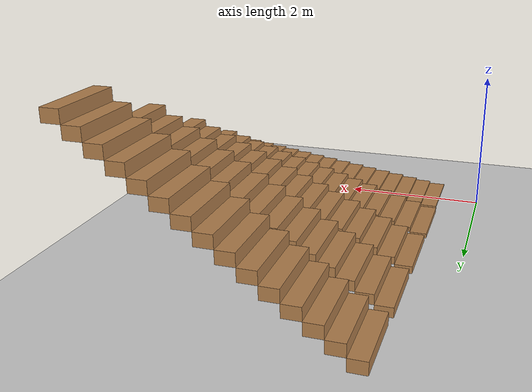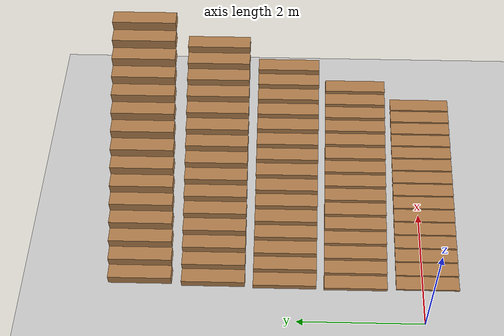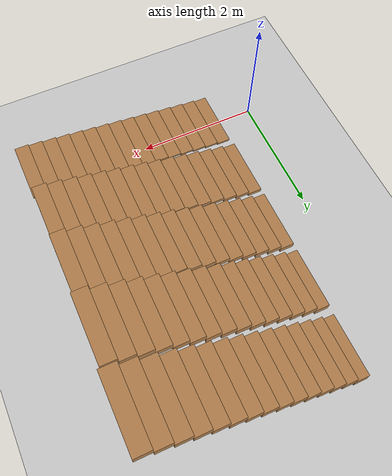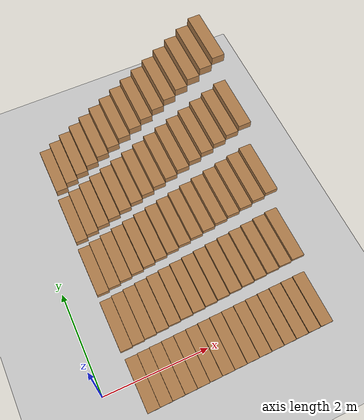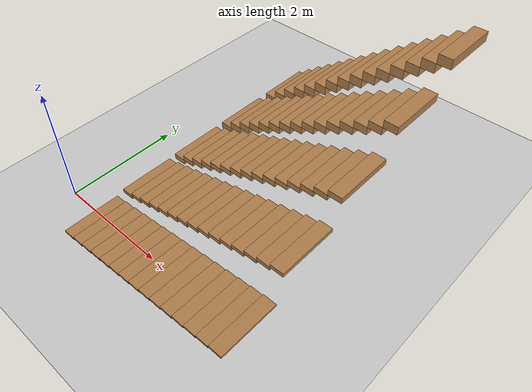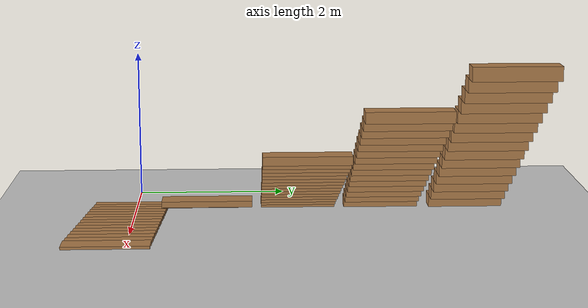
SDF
<sdf version="1.6">
 <world name="default">
  <model name="ground_plane">
   <static>1</static>
   <link name="link">
    <collision name="collision">
     <geometry><plane><normal>0 0 1</normal><size>100 100</size></plane></geometry>
     <surface>
      <contact><collide_bitmask>65535</collide_bitmask></contact>
      <friction><ode><mu>100</mu><mu2>50</mu2></ode></friction>
     </surface>
    </collision>
    <visual name="visual">
     <cast_shadows>0</cast_shadows>
     <geometry><plane><normal>0 0 1</normal><size>100 100</size></plane></geometry>
     <material>
      <script><uri>file://media/materials/scripts/gazebo.material</uri><name>Gazebo/Grey</name></script>
     </material>
    </visual>
   </link>
  </model>
  <model name="stairs_4group">
   <pose>2.34848 2.20062 0 0 -0 0</pose>
   <link name="Stairs_0">
    <visual name="Stairs_0_Visual_0">
     <pose>-1.66333 -1.135 0.033333 0 -0 1.5708</pose>
     <geometry><box><size>1 0.233333 0.066667</size></box></geometry>
     <material>
      <script><uri>file://media/materials/scripts/gazebo.material</uri><name>Gazebo/Wood</name></script>
      <ambient>0.996078 0.47451 0.0196078 1</ambient>
     </material>
     <meta><layer>0</layer></meta>
    </visual>
    <collision name="Stairs_0_Collision_0">
     <geometry><box><size>1 0.233333 0.066667</size></box></geometry>
     <pose>-1.66333 -1.135 0.033333 0 -0 1.5708</pose>
    </collision>
    <visual name="Stairs_0_Visual_1">
     <pose>-1.43 -1.135 0.1 0 -0 1.5708</pose>
     <geometry><box><size>1 0.233333 0.066667</size></box></geometry>
     <material>
      <script><uri>file://media/materials/scripts/gazebo.material</uri><name>Gazebo/Wood</name></script>
      <ambient>0.996078 0.47451 0.0196078 1</ambient>
     </material>
     <meta><layer>0</layer></meta>
    </visual>
    <collision name="Stairs_0_Collision_1">
     <geometry><box><size>1 0.233333 0.066667</size></box></geometry>
     <pose>-1.43 -1.135 0.1 0 -0 1.5708</pose>
    </collision>
    <visual name="Stairs_0_Visual_2">
     <pose>-1.19667 -1.135 0.166667 0 -0 1.5708</pose>
     <geometry><box><size>1 0.233333 0.066667</size></box></geometry>
     <material>
      <script><uri>file://media/materials/scripts/gazebo.material</uri><name>Gazebo/Wood</name></script>
      <ambient>0.996078 0.47451 0.0196078 1</ambient>
     </material>
     <meta><layer>0</layer></meta>
    </visual>
    <collision name="Stairs_0_Collision_2">
     <geometry><box><size>1 0.233333 0.066667</size></box></geometry>
     <pose>-1.19667 -1.135 0.166667 0 -0 1.5708</pose>
    </collision>
    <visual name="Stairs_0_Visual_3">
     <pose>-0.963333 -1.135 0.233333 0 -0 1.5708</pose>
     <geometry><box><size>1 0.233333 0.066667</size></box></geometry>
     <material>
      <script><uri>file://media/materials/scripts/gazebo.material</uri><name>Gazebo/Wood</name></script>
      <ambient>0.996078 0.47451 0.0196078 1</ambient>
     </material>
     <meta><layer>0</layer></meta>
    </visual>
    <collision name="Stairs_0_Collision_3">
     <geometry><box><size>1 0.233333 0.066667</size></box></geometry>
     <pose>-0.963333 -1.135 0.233333 0 -0 1.5708</pose>
    </collision>
    <visual name="Stairs_0_Visual_4">
     <pose>-0.73 -1.135 0.3 0 -0 1.5708</pose>
     <geometry><box><size>1 0.233333 0.066667</size></box></geometry>
     <material>
      <script><uri>file://media/materials/scripts/gazebo.material</uri><name>Gazebo/Wood</name></script>
      <ambient>0.996078 0.47451 0.0196078 1</ambient>
     </material>
     <meta><layer>0</layer></meta>
    </visual>
    <collision name="Stairs_0_Collision_4">
     <geometry><box><size>1 0.233333 0.066667</size></box></geometry>
     <pose>-0.73 -1.135 0.3 0 -0 1.5708</pose>
    </collision>
    <visual name="Stairs_0_Visual_5">
     <pose>-0.496667 -1.135 0.366667 0 -0 1.5708</pose>
     <geometry><box><size>1 0.233333 0.066667</size></box></geometry>
     <material>
      <script><uri>file://media/materials/scripts/gazebo.material</uri><name>Gazebo/Wood</name></script>
      <ambient>0.996078 0.47451 0.0196078 1</ambient>
     </material>
     <meta><layer>0</layer></meta>
    </visual>
    <collision name="Stairs_0_Collision_5">
     <geometry><box><size>1 0.233333 0.066667</size></box></geometry>
     <pose>-0.496667 -1.135 0.366667 0 -0 1.5708</pose>
    </collision>
    <visual name="Stairs_0_Visual_6">
     <pose>-0.263333 -1.135 0.433333 0 -0 1.5708</pose>
     <geometry><box><size>1 0.233333 0.066667</size></box></geometry>
     <material>
      <script><uri>file://media/materials/scripts/gazebo.material</uri><name>Gazebo/Wood</name></script>
      <ambient>0.996078 0.47451 0.0196078 1</ambient>
     </material>
     <meta><layer>0</layer></meta>
    </visual>
    <collision name="Stairs_0_Collision_6">
     <geometry><box><size>1 0.233333 0.066667</size></box></geometry>
     <pose>-0.263333 -1.135 0.433333 0 -0 1.5708</pose>
    </collision>
    <visual name="Stairs_0_Visual_7">
     <pose>-0.03 -1.135 0.5 0 -0 1.5708</pose>
     <geometry><box><size>1 0.233333 0.066667</size></box></geometry>
     <material>
      <script><uri>file://media/materials/scripts/gazebo.material</uri><name>Gazebo/Wood</name></script>
      <ambient>0.996078 0.47451 0.0196078 1</ambient>
     </material>
     <meta><layer>0</layer></meta>
    </visual>
    <collision name="Stairs_0_Collision_7">
     <geometry><box><size>1 0.233333 0.066667</size></box></geometry>
     <pose>-0.03 -1.135 0.5 0 -0 1.5708</pose>
    </collision>
    <visual name="Stairs_0_Visual_8">
     <pose>0.203334 -1.135 0.566667 0 -0 1.5708</pose>
     <geometry><box><size>1 0.233333 0.066667</size></box></geometry>
     <material>
      <script><uri>file://media/materials/scripts/gazebo.material</uri><name>Gazebo/Wood</name></script>
      <ambient>0.996078 0.47451 0.0196078 1</ambient>
     </material>
     <meta><layer>0</layer></meta>
    </visual>
    <collision name="Stairs_0_Collision_8">
     <geometry><box><size>1 0.233333 0.066667</size></box></geometry>
     <pose>0.203334 -1.135 0.566667 0 -0 1.5708</pose>
    </collision>
    <visual name="Stairs_0_Visual_9">
     <pose>0.436667 -1.135 0.633333 0 -0 1.5708</pose>
     <geometry><box><size>1 0.233333 0.066667</size></box></geometry>
     <material>
      <script><uri>file://media/materials/scripts/gazebo.material</uri><name>Gazebo/Wood</name></script>
      <ambient>0.996078 0.47451 0.0196078 1</ambient>
     </material>
     <meta><layer>0</layer></meta>
    </visual>
    <collision name="Stairs_0_Collision_9">
     <geometry><box><size>1 0.233333 0.066667</size></box></geometry>
     <pose>0.436667 -1.135 0.633333 0 -0 1.5708</pose>
    </collision>
    <visual name="Stairs_0_Visual_10">
     <pose>0.67 -1.135 0.7 0 -0 1.5708</pose>
     <geometry><box><size>1 0.233333 0.066667</size></box></geometry>
     <material>
      <script><uri>file://media/materials/scripts/gazebo.material</uri><name>Gazebo/Wood</name></script>
      <ambient>0.996078 0.47451 0.0196078 1</ambient>
     </material>
     <meta><layer>0</layer></meta>
    </visual>
    <collision name="Stairs_0_Collision_10">
     <geometry><box><size>1 0.233333 0.066667</size></box></geometry>
     <pose>0.67 -1.135 0.7 0 -0 1.5708</pose>
    </collision>
    <visual name="Stairs_0_Visual_11">
     <pose>0.903333 -1.135 0.766667 0 -0 1.5708</pose>
     <geometry><box><size>1 0.233333 0.066667</size></box></geometry>
     <material>
      <script><uri>file://media/materials/scripts/gazebo.material</uri><name>Gazebo/Wood</name></script>
      <ambient>0.996078 0.47451 0.0196078 1</ambient>
     </material>
     <meta><layer>0</layer></meta>
    </visual>
    <collision name="Stairs_0_Collision_11">
     <geometry><box><size>1 0.233333 0.066667</size></box></geometry>
     <pose>0.903333 -1.135 0.766667 0 -0 1.5708</pose>
    </collision>
    <visual name="Stairs_0_Visual_12">
     <pose>1.13667 -1.135 0.833333 0 -0 1.5708</pose>
     <geometry><box><size>1 0.233333 0.066667</size></box></geometry>
     <material>
      <script><uri>file://media/materials/scripts/gazebo.material</uri><name>Gazebo/Wood</name></script>
      <ambient>0.996078 0.47451 0.0196078 1</ambient>
     </material>
     <meta><layer>0</layer></meta>
    </visual>
    <collision name="Stairs_0_Collision_12">
     <geometry><box><size>1 0.233333 0.066667</size></box></geometry>
     <pose>1.13667 -1.135 0.833333 0 -0 1.5708</pose>
    </collision>
    <visual name="Stairs_0_Visual_13">
     <pose>1.37 -1.135 0.9 0 -0 1.5708</pose>
     <geometry><box><size>1 0.233333 0.066667</size></box></geometry>
     <material>
      <script><uri>file://media/materials/scripts/gazebo.material</uri><name>Gazebo/Wood</name></script>
      <ambient>0.996078 0.47451 0.0196078 1</ambient>
     </material>
     <meta><layer>0</layer></meta>
    </visual>
    <collision name="Stairs_0_Collision_13">
     <geometry><box><size>1 0.233333 0.066667</size></box></geometry>
     <pose>1.37 -1.135 0.9 0 -0 1.5708</pose>
    </collision>
    <visual name="Stairs_0_Visual_14">
     <pose>1.60333 -1.135 0.966667 0 -0 1.5708</pose>
     <geometry><box><size>1 0.233333 0.066667</size></box></geometry>
     <material>
      <script><uri>file://media/materials/scripts/gazebo.material</uri><name>Gazebo/Wood</name></script>
      <ambient>0.996078 0.47451 0.0196078 1</ambient>
     </material>
     <meta><layer>0</layer></meta>
    </visual>
    <collision name="Stairs_0_Collision_14">
     <geometry><box><size>1 0.233333 0.066667</size></box></geometry>
     <pose>1.60333 -1.135 0.966667 0 -0 1.5708</pose>
    </collision>
   </link>
   <link name="Stairs_2">
    <visual name="Stairs_2_Visual_0">
     <pose>-1.64333 -2.275 0.016667 0 -0 1.5708</pose>
     <geometry><box><size>1 0.233333 0.033333</size></box></geometry>
     <material>
      <script><uri>file://media/materials/scripts/gazebo.material</uri><name>Gazebo/Wood</name></script>
      <ambient>1 1 1 1</ambient>
     </material>
     <meta><layer>0</layer></meta>
    </visual>
    <collision name="Stairs_2_Collision_0">
     <geometry><box><size>1 0.233333 0.033333</size></box></geometry>
     <pose>-1.64333 -2.275 0.016667 0 -0 1.5708</pose>
    </collision>
    <visual name="Stairs_2_Visual_1">
     <pose>-1.41 -2.275 0.05 0 -0 1.5708</pose>
     <geometry><box><size>1 0.233333 0.033333</size></box></geometry>
     <material>
      <script><uri>file://media/materials/scripts/gazebo.material</uri><name>Gazebo/Wood</name></script>
      <ambient>1 1 1 1</ambient>
     </material>
     <meta><layer>0</layer></meta>
    </visual>
    <collision name="Stairs_2_Collision_1">
     <geometry><box><size>1 0.233333 0.033333</size></box></geometry>
     <pose>-1.41 -2.275 0.05 0 -0 1.5708</pose>
    </collision>
    <visual name="Stairs_2_Visual_2">
     <pose>-1.17667 -2.275 0.083333 0 -0 1.5708</pose>
     <geometry><box><size>1 0.233333 0.033333</size></box></geometry>
     <material>
      <script><uri>file://media/materials/scripts/gazebo.material</uri><name>Gazebo/Wood</name></script>
      <ambient>1 1 1 1</ambient>
     </material>
     <meta><layer>0</layer></meta>
    </visual>
    <collision name="Stairs_2_Collision_2">
     <geometry><box><size>1 0.233333 0.033333</size></box></geometry>
     <pose>-1.17667 -2.275 0.083333 0 -0 1.5708</pose>
    </collision>
    <visual name="Stairs_2_Visual_3">
     <pose>-0.943333 -2.275 0.116667 0 -0 1.5708</pose>
     <geometry><box><size>1 0.233333 0.033333</size></box></geometry>
     <material>
      <script><uri>file://media/materials/scripts/gazebo.material</uri><name>Gazebo/Wood</name></script>
      <ambient>1 1 1 1</ambient>
     </material>
     <meta><layer>0</layer></meta>
    </visual>
    <collision name="Stairs_2_Collision_3">
     <geometry><box><size>1 0.233333 0.033333</size></box></geometry>
     <pose>-0.943333 -2.275 0.116667 0 -0 1.5708</pose>
    </collision>
    <visual name="Stairs_2_Visual_4">
     <pose>-0.71 -2.275 0.15 0 -0 1.5708</pose>
     <geometry><box><size>1 0.233333 0.033333</size></box></geometry>
     <material>
      <script><uri>file://media/materials/scripts/gazebo.material</uri><name>Gazebo/Wood</name></script>
      <ambient>1 1 1 1</ambient>
     </material>
     <meta><layer>0</layer></meta>
    </visual>
    <collision name="Stairs_2_Collision_4">
     <geometry><box><size>1 0.233333 0.033333</size></box></geometry>
     <pose>-0.71 -2.275 0.15 0 -0 1.5708</pose>
    </collision>
    <visual name="Stairs_2_Visual_5">
     <pose>-0.476667 -2.275 0.183333 0 -0 1.5708</pose>
     <geometry><box><size>1 0.233333 0.033333</size></box></geometry>
     <material>
      <script><uri>file://media/materials/scripts/gazebo.material</uri><name>Gazebo/Wood</name></script>
      <ambient>1 1 1 1</ambient>
     </material>
     <meta><layer>0</layer></meta>
    </visual>
    <collision name="Stairs_2_Collision_5">
     <geometry><box><size>1 0.233333 0.033333</size></box></geometry>
     <pose>-0.476667 -2.275 0.183333 0 -0 1.5708</pose>
    </collision>
    <visual name="Stairs_2_Visual_6">
     <pose>-0.243333 -2.275 0.216667 0 -0 1.5708</pose>
     <geometry><box><size>1 0.233333 0.033333</size></box></geometry>
     <material>
      <script><uri>file://media/materials/scripts/gazebo.material</uri><name>Gazebo/Wood</name></script>
      <ambient>1 1 1 1</ambient>
     </material>
     <meta><layer>0</layer></meta>
    </visual>
    <collision name="Stairs_2_Collision_6">
     <geometry><box><size>1 0.233333 0.033333</size></box></geometry>
     <pose>-0.243333 -2.275 0.216667 0 -0 1.5708</pose>
    </collision>
    <visual name="Stairs_2_Visual_7">
     <pose>-0.01 -2.275 0.25 0 -0 1.5708</pose>
     <geometry><box><size>1 0.233333 0.033333</size></box></geometry>
     <material>
      <script><uri>file://media/materials/scripts/gazebo.material</uri><name>Gazebo/Wood</name></script>
      <ambient>1 1 1 1</ambient>
     </material>
     <meta><layer>0</layer></meta>
    </visual>
    <collision name="Stairs_2_Collision_7">
     <geometry><box><size>1 0.233333 0.033333</size></box></geometry>
     <pose>-0.01 -2.275 0.25 0 -0 1.5708</pose>
    </collision>
    <visual name="Stairs_2_Visual_8">
     <pose>0.223334 -2.275 0.283333 0 -0 1.5708</pose>
     <geometry><box><size>1 0.233333 0.033333</size></box></geometry>
     <material>
      <script><uri>file://media/materials/scripts/gazebo.material</uri><name>Gazebo/Wood</name></script>
      <ambient>1 1 1 1</ambient>
     </material>
     <meta><layer>0</layer></meta>
    </visual>
    <collision name="Stairs_2_Collision_8">
     <geometry><box><size>1 0.233333 0.033333</size></box></geometry>
     <pose>0.223334 -2.275 0.283333 0 -0 1.5708</pose>
    </collision>
    <visual name="Stairs_2_Visual_9">
     <pose>0.456667 -2.275 0.316667 0 -0 1.5708</pose>
     <geometry><box><size>1 0.233333 0.033333</size></box></geometry>
     <material>
      <script><uri>file://media/materials/scripts/gazebo.material</uri><name>Gazebo/Wood</name></script>
      <ambient>1 1 1 1</ambient>
     </material>
     <meta><layer>0</layer></meta>
    </visual>
    <collision name="Stairs_2_Collision_9">
     <geometry><box><size>1 0.233333 0.033333</size></box></geometry>
     <pose>0.456667 -2.275 0.316667 0 -0 1.5708</pose>
    </collision>
    <visual name="Stairs_2_Visual_10">
     <pose>0.69 -2.275 0.35 0 -0 1.5708</pose>
     <geometry><box><size>1 0.233333 0.033333</size></box></geometry>
     <material>
      <script><uri>file://media/materials/scripts/gazebo.material</uri><name>Gazebo/Wood</name></script>
      <ambient>1 1 1 1</ambient>
     </material>
     <meta><layer>0</layer></meta>
    </visual>
    <collision name="Stairs_2_Collision_10">
     <geometry><box><size>1 0.233333 0.033333</size></box></geometry>
     <pose>0.69 -2.275 0.35 0 -0 1.5708</pose>
    </collision>
    <visual name="Stairs_2_Visual_11">
     <pose>0.923333 -2.275 0.383333 0 -0 1.5708</pose>
     <geometry><box><size>1 0.233333 0.033333</size></box></geometry>
     <material>
      <script><uri>file://media/materials/scripts/gazebo.material</uri><name>Gazebo/Wood</name></script>
      <ambient>1 1 1 1</ambient>
     </material>
     <meta><layer>0</layer></meta>
    </visual>
    <collision name="Stairs_2_Collision_11">
     <geometry><box><size>1 0.233333 0.033333</size></box></geometry>
     <pose>0.923333 -2.275 0.383333 0 -0 1.5708</pose>
    </collision>
    <visual name="Stairs_2_Visual_12">
     <pose>1.15667 -2.275 0.416667 0 -0 1.5708</pose>
     <geometry><box><size>1 0.233333 0.033333</size></box></geometry>
     <material>
      <script><uri>file://media/materials/scripts/gazebo.material</uri><name>Gazebo/Wood</name></script>
      <ambient>1 1 1 1</ambient>
     </material>
     <meta><layer>0</layer></meta>
    </visual>
    <collision name="Stairs_2_Collision_12">
     <geometry><box><size>1 0.233333 0.033333</size></box></geometry>
     <pose>1.15667 -2.275 0.416667 0 -0 1.5708</pose>
    </collision>
    <visual name="Stairs_2_Visual_13">
     <pose>1.39 -2.275 0.45 0 -0 1.5708</pose>
     <geometry><box><size>1 0.233333 0.033333</size></box></geometry>
     <material>
      <script><uri>file://media/materials/scripts/gazebo.material</uri><name>Gazebo/Wood</name></script>
      <ambient>1 1 1 1</ambient>
     </material>
     <meta><layer>0</layer></meta>
    </visual>
    <collision name="Stairs_2_Collision_13">
     <geometry><box><size>1 0.233333 0.033333</size></box></geometry>
     <pose>1.39 -2.275 0.45 0 -0 1.5708</pose>
    </collision>
    <visual name="Stairs_2_Visual_14">
     <pose>1.62333 -2.275 0.483333 0 -0 1.5708</pose>
     <geometry><box><size>1 0.233333 0.033333</size></box></geometry>
     <material>
      <script><uri>file://media/materials/scripts/gazebo.material</uri><name>Gazebo/Wood</name></script>
      <ambient>1 1 1 1</ambient>
     </material>
     <meta><layer>0</layer></meta>
    </visual>
    <collision name="Stairs_2_Collision_14">
     <geometry><box><size>1 0.233333 0.033333</size></box></geometry>
     <pose>1.62333 -2.275 0.483333 0 -0 1.5708</pose>
    </collision>
   </link>
   <link name="Stairs_3">
    <visual name="Stairs_3_Visual_0">
     <pose>-1.65333 -0.015 0.05 0 -0 1.5708</pose>
     <geometry><box><size>1 0.233333 0.1</size></box></geometry>
     <material>
      <script><uri>file://media/materials/scripts/gazebo.material</uri><name>Gazebo/Wood</name></script>
      <ambient>1 1 1 1</ambient>
     </material>
     <meta><layer>0</layer></meta>
    </visual>
    <collision name="Stairs_3_Collision_0">
     <geometry><box><size>1 0.233333 0.1</size></box></geometry>
     <pose>-1.65333 -0.015 0.05 0 -0 1.5708</pose>
    </collision>
    <visual name="Stairs_3_Visual_1">
     <pose>-1.42 -0.015 0.15 0 -0 1.5708</pose>
     <geometry><box><size>1 0.233333 0.1</size></box></geometry>
     <material>
      <script><uri>file://media/materials/scripts/gazebo.material</uri><name>Gazebo/Wood</name></script>
      <ambient>1 1 1 1</ambient>
     </material>
     <meta><layer>0</layer></meta>
    </visual>
    <collision name="Stairs_3_Collision_1">
     <geometry><box><size>1 0.233333 0.1</size></box></geometry>
     <pose>-1.42 -0.015 0.15 0 -0 1.5708</pose>
    </collision>
    <visual name="Stairs_3_Visual_2">
     <pose>-1.18667 -0.015 0.25 0 -0 1.5708</pose>
     <geometry><box><size>1 0.233333 0.1</size></box></geometry>
     <material>
      <script><uri>file://media/materials/scripts/gazebo.material</uri><name>Gazebo/Wood</name></script>
      <ambient>1 1 1 1</ambient>
     </material>
     <meta><layer>0</layer></meta>
    </visual>
    <collision name="Stairs_3_Collision_2">
     <geometry><box><size>1 0.233333 0.1</size></box></geometry>
     <pose>-1.18667 -0.015 0.25 0 -0 1.5708</pose>
    </collision>
    <visual name="Stairs_3_Visual_3">
     <pose>-0.953334 -0.015 0.35 0 -0 1.5708</pose>
     <geometry><box><size>1 0.233333 0.1</size></box></geometry>
     <material>
      <script><uri>file://media/materials/scripts/gazebo.material</uri><name>Gazebo/Wood</name></script>
      <ambient>1 1 1 1</ambient>
     </material>
     <meta><layer>0</layer></meta>
    </visual>
    <collision name="Stairs_3_Collision_3">
     <geometry><box><size>1 0.233333 0.1</size></box></geometry>
     <pose>-0.953334 -0.015 0.35 0 -0 1.5708</pose>
    </collision>
    <visual name="Stairs_3_Visual_4">
     <pose>-0.72 -0.015 0.45 0 -0 1.5708</pose>
     <geometry><box><size>1 0.233333 0.1</size></box></geometry>
     <material>
      <script><uri>file://media/materials/scripts/gazebo.material</uri><name>Gazebo/Wood</name></script>
      <ambient>1 1 1 1</ambient>
     </material>
     <meta><layer>0</layer></meta>
    </visual>
    <collision name="Stairs_3_Collision_4">
     <geometry><box><size>1 0.233333 0.1</size></box></geometry>
     <pose>-0.72 -0.015 0.45 0 -0 1.5708</pose>
    </collision>
    <visual name="Stairs_3_Visual_5">
     <pose>-0.486667 -0.015 0.55 0 -0 1.5708</pose>
     <geometry><box><size>1 0.233333 0.1</size></box></geometry>
     <material>
      <script><uri>file://media/materials/scripts/gazebo.material</uri><name>Gazebo/Wood</name></script>
      <ambient>1 1 1 1</ambient>
     </material>
     <meta><layer>0</layer></meta>
    </visual>
    <collision name="Stairs_3_Collision_5">
     <geometry><box><size>1 0.233333 0.1</size></box></geometry>
     <pose>-0.486667 -0.015 0.55 0 -0 1.5708</pose>
    </collision>
    <visual name="Stairs_3_Visual_6">
     <pose>-0.253333 -0.015 0.65 0 -0 1.5708</pose>
     <geometry><box><size>1 0.233333 0.1</size></box></geometry>
     <material>
      <script><uri>file://media/materials/scripts/gazebo.material</uri><name>Gazebo/Wood</name></script>
      <ambient>1 1 1 1</ambient>
     </material>
     <meta><layer>0</layer></meta>
    </visual>
    <collision name="Stairs_3_Collision_6">
     <geometry><box><size>1 0.233333 0.1</size></box></geometry>
     <pose>-0.253333 -0.015 0.65 0 -0 1.5708</pose>
    </collision>
    <visual name="Stairs_3_Visual_7">
     <pose>-0.02 -0.015 0.75 0 -0 1.5708</pose>
     <geometry><box><size>1 0.233333 0.1</size></box></geometry>
     <material>
      <script><uri>file://media/materials/scripts/gazebo.material</uri><name>Gazebo/Wood</name></script>
      <ambient>1 1 1 1</ambient>
     </material>
     <meta><layer>0</layer></meta>
    </visual>
    <collision name="Stairs_3_Collision_7">
     <geometry><box><size>1 0.233333 0.1</size></box></geometry>
     <pose>-0.02 -0.015 0.75 0 -0 1.5708</pose>
    </collision>
    <visual name="Stairs_3_Visual_8">
     <pose>0.213333 -0.015 0.85 0 -0 1.5708</pose>
     <geometry><box><size>1 0.233333 0.1</size></box></geometry>
     <material>
      <script><uri>file://media/materials/scripts/gazebo.material</uri><name>Gazebo/Wood</name></script>
      <ambient>1 1 1 1</ambient>
     </material>
     <meta><layer>0</layer></meta>
    </visual>
    <collision name="Stairs_3_Collision_8">
     <geometry><box><size>1 0.233333 0.1</size></box></geometry>
     <pose>0.213333 -0.015 0.85 0 -0 1.5708</pose>
    </collision>
    <visual name="Stairs_3_Visual_9">
     <pose>0.446667 -0.015 0.95 0 -0 1.5708</pose>
     <geometry><box><size>1 0.233333 0.1</size></box></geometry>
     <material>
      <script><uri>file://media/materials/scripts/gazebo.material</uri><name>Gazebo/Wood</name></script>
      <ambient>1 1 1 1</ambient>
     </material>
     <meta><layer>0</layer></meta>
    </visual>
    <collision name="Stairs_3_Collision_9">
     <geometry><box><size>1 0.233333 0.1</size></box></geometry>
     <pose>0.446667 -0.015 0.95 0 -0 1.5708</pose>
    </collision>
    <visual name="Stairs_3_Visual_10">
     <pose>0.68 -0.015 1.05 0 -0 1.5708</pose>
     <geometry><box><size>1 0.233333 0.1</size></box></geometry>
     <material>
      <script><uri>file://media/materials/scripts/gazebo.material</uri><name>Gazebo/Wood</name></script>
      <ambient>1 1 1 1</ambient>
     </material>
     <meta><layer>0</layer></meta>
    </visual>
    <collision name="Stairs_3_Collision_10">
     <geometry><box><size>1 0.233333 0.1</size></box></geometry>
     <pose>0.68 -0.015 1.05 0 -0 1.5708</pose>
    </collision>
    <visual name="Stairs_3_Visual_11">
     <pose>0.913334 -0.015 1.15 0 -0 1.5708</pose>
     <geometry><box><size>1 0.233333 0.1</size></box></geometry>
     <material>
      <script><uri>file://media/materials/scripts/gazebo.material</uri><name>Gazebo/Wood</name></script>
      <ambient>1 1 1 1</ambient>
     </material>
     <meta><layer>0</layer></meta>
    </visual>
    <collision name="Stairs_3_Collision_11">
     <geometry><box><size>1 0.233333 0.1</size></box></geometry>
     <pose>0.913334 -0.015 1.15 0 -0 1.5708</pose>
    </collision>
    <visual name="Stairs_3_Visual_12">
     <pose>1.14667 -0.015 1.25 0 -0 1.5708</pose>
     <geometry><box><size>1 0.233333 0.1</size></box></geometry>
     <material>
      <script><uri>file://media/materials/scripts/gazebo.material</uri><name>Gazebo/Wood</name></script>
      <ambient>1 1 1 1</ambient>
     </material>
     <meta><layer>0</layer></meta>
    </visual>
    <collision name="Stairs_3_Collision_12">
     <geometry><box><size>1 0.233333 0.1</size></box></geometry>
     <pose>1.14667 -0.015 1.25 0 -0 1.5708</pose>
    </collision>
    <visual name="Stairs_3_Visual_13">
     <pose>1.38 -0.015 1.35 0 -0 1.5708</pose>
     <geometry><box><size>1 0.233333 0.1</size></box></geometry>
     <material>
      <script><uri>file://media/materials/scripts/gazebo.material</uri><name>Gazebo/Wood</name></script>
      <ambient>1 1 1 1</ambient>
     </material>
     <meta><layer>0</layer></meta>
    </visual>
    <collision name="Stairs_3_Collision_13">
     <geometry><box><size>1 0.233333 0.1</size></box></geometry>
     <pose>1.38 -0.015 1.35 0 -0 1.5708</pose>
    </collision>
    <visual name="Stairs_3_Visual_14">
     <pose>1.61333 -0.015 1.45 0 -0 1.5708</pose>
     <geometry><box><size>1 0.233333 0.1</size></box></geometry>
     <material>
      <script><uri>file://media/materials/scripts/gazebo.material</uri><name>Gazebo/Wood</name></script>
      <ambient>1 1 1 1</ambient>
     </material>
     <meta><layer>0</layer></meta>
    </visual>
    <collision name="Stairs_3_Collision_14">
     <geometry><box><size>1 0.233333 0.1</size></box></geometry>
     <pose>1.61333 -0.015 1.45 0 -0 1.5708</pose>
    </collision>
   </link>
   <link name="Stairs_4">
    <visual name="Stairs_4_Visual_0">
     <pose>-1.63333 1.115 0.066667 0 -0 1.5708</pose>
     <geometry><box><size>1 0.233333 0.133333</size></box></geometry>
     <material>
      <script><uri>file://media/materials/scripts/gazebo.material</uri><name>Gazebo/Wood</name></script>
      <ambient>1 1 1 1</ambient>
     </material>
     <meta><layer>0</layer></meta>
    </visual>
    <collision name="Stairs_4_Collision_0">
     <geometry><box><size>1 0.233333 0.133333</size></box></geometry>
     <pose>-1.63333 1.115 0.066667 0 -0 1.5708</pose>
    </collision>
    <visual name="Stairs_4_Visual_1">
     <pose>-1.4 1.115 0.2 0 -0 1.5708</pose>
     <geometry><box><size>1 0.233333 0.133333</size></box></geometry>
     <material>
      <script><uri>file://media/materials/scripts/gazebo.material</uri><name>Gazebo/Wood</name></script>
      <ambient>1 1 1 1</ambient>
     </material>
     <meta><layer>0</layer></meta>
    </visual>
    <collision name="Stairs_4_Collision_1">
     <geometry><box><size>1 0.233333 0.133333</size></box></geometry>
     <pose>-1.4 1.115 0.2 0 -0 1.5708</pose>
    </collision>
    <visual name="Stairs_4_Visual_2">
     <pose>-1.16667 1.115 0.333333 0 -0 1.5708</pose>
     <geometry><box><size>1 0.233333 0.133333</size></box></geometry>
     <material>
      <script><uri>file://media/materials/scripts/gazebo.material</uri><name>Gazebo/Wood</name></script>
      <ambient>1 1 1 1</ambient>
     </material>
     <meta><layer>0</layer></meta>
    </visual>
    <collision name="Stairs_4_Collision_2">
     <geometry><box><size>1 0.233333 0.133333</size></box></geometry>
     <pose>-1.16667 1.115 0.333333 0 -0 1.5708</pose>
    </collision>
    <visual name="Stairs_4_Visual_3">
     <pose>-0.933333 1.115 0.466667 0 -0 1.5708</pose>
     <geometry><box><size>1 0.233333 0.133333</size></box></geometry>
     <material>
      <script><uri>file://media/materials/scripts/gazebo.material</uri><name>Gazebo/Wood</name></script>
      <ambient>1 1 1 1</ambient>
     </material>
     <meta><layer>0</layer></meta>
    </visual>
    <collision name="Stairs_4_Collision_3">
     <geometry><box><size>1 0.233333 0.133333</size></box></geometry>
     <pose>-0.933333 1.115 0.466667 0 -0 1.5708</pose>
    </collision>
    <visual name="Stairs_4_Visual_4">
     <pose>-0.7 1.115 0.6 0 -0 1.5708</pose>
     <geometry><box><size>1 0.233333 0.133333</size></box></geometry>
     <material>
      <script><uri>file://media/materials/scripts/gazebo.material</uri><name>Gazebo/Wood</name></script>
      <ambient>1 1 1 1</ambient>
     </material>
     <meta><layer>0</layer></meta>
    </visual>
    <collision name="Stairs_4_Collision_4">
     <geometry><box><size>1 0.233333 0.133333</size></box></geometry>
     <pose>-0.7 1.115 0.6 0 -0 1.5708</pose>
    </collision>
    <visual name="Stairs_4_Visual_5">
     <pose>-0.466666 1.115 0.733333 0 -0 1.5708</pose>
     <geometry><box><size>1 0.233333 0.133333</size></box></geometry>
     <material>
      <script><uri>file://media/materials/scripts/gazebo.material</uri><name>Gazebo/Wood</name></script>
      <ambient>1 1 1 1</ambient>
     </material>
     <meta><layer>0</layer></meta>
    </visual>
    <collision name="Stairs_4_Collision_5">
     <geometry><box><size>1 0.233333 0.133333</size></box></geometry>
     <pose>-0.466666 1.115 0.733333 0 -0 1.5708</pose>
    </collision>
    <visual name="Stairs_4_Visual_6">
     <pose>-0.233333 1.115 0.866667 0 -0 1.5708</pose>
     <geometry><box><size>1 0.233333 0.133333</size></box></geometry>
     <material>
      <script><uri>file://media/materials/scripts/gazebo.material</uri><name>Gazebo/Wood</name></script>
      <ambient>1 1 1 1</ambient>
     </material>
     <meta><layer>0</layer></meta>
    </visual>
    <collision name="Stairs_4_Collision_6">
     <geometry><box><size>1 0.233333 0.133333</size></box></geometry>
     <pose>-0.233333 1.115 0.866667 0 -0 1.5708</pose>
    </collision>
    <visual name="Stairs_4_Visual_7">
     <pose>0 1.115 1 0 -0 1.5708</pose>
     <geometry><box><size>1 0.233333 0.133333</size></box></geometry>
     <material>
      <script><uri>file://media/materials/scripts/gazebo.material</uri><name>Gazebo/Wood</name></script>
      <ambient>1 1 1 1</ambient>
     </material>
     <meta><layer>0</layer></meta>
    </visual>
    <collision name="Stairs_4_Collision_7">
     <geometry><box><size>1 0.233333 0.133333</size></box></geometry>
     <pose>0 1.115 1 0 -0 1.5708</pose>
    </collision>
    <visual name="Stairs_4_Visual_8">
     <pose>0.233334 1.115 1.13333 0 -0 1.5708</pose>
     <geometry><box><size>1 0.233333 0.133333</size></box></geometry>
     <material>
      <script><uri>file://media/materials/scripts/gazebo.material</uri><name>Gazebo/Wood</name></script>
      <ambient>1 1 1 1</ambient>
     </material>
     <meta><layer>0</layer></meta>
    </visual>
    <collision name="Stairs_4_Collision_8">
     <geometry><box><size>1 0.233333 0.133333</size></box></geometry>
     <pose>0.233334 1.115 1.13333 0 -0 1.5708</pose>
    </collision>
    <visual name="Stairs_4_Visual_9">
     <pose>0.466667 1.115 1.26667 0 -0 1.5708</pose>
     <geometry><box><size>1 0.233333 0.133333</size></box></geometry>
     <material>
      <script><uri>file://media/materials/scripts/gazebo.material</uri><name>Gazebo/Wood</name></script>
      <ambient>1 1 1 1</ambient>
     </material>
     <meta><layer>0</layer></meta>
    </visual>
    <collision name="Stairs_4_Collision_9">
     <geometry><box><size>1 0.233333 0.133333</size></box></geometry>
     <pose>0.466667 1.115 1.26667 0 -0 1.5708</pose>
    </collision>
    <visual name="Stairs_4_Visual_10">
     <pose>0.7 1.115 1.4 0 -0 1.5708</pose>
     <geometry><box><size>1 0.233333 0.133333</size></box></geometry>
     <material>
      <script><uri>file://media/materials/scripts/gazebo.material</uri><name>Gazebo/Wood</name></script>
      <ambient>1 1 1 1</ambient>
     </material>
     <meta><layer>0</layer></meta>
    </visual>
    <collision name="Stairs_4_Collision_10">
     <geometry><box><size>1 0.233333 0.133333</size></box></geometry>
     <pose>0.7 1.115 1.4 0 -0 1.5708</pose>
    </collision>
    <visual name="Stairs_4_Visual_11">
     <pose>0.933334 1.115 1.53333 0 -0 1.5708</pose>
     <geometry><box><size>1 0.233333 0.133333</size></box></geometry>
     <material>
      <script><uri>file://media/materials/scripts/gazebo.material</uri><name>Gazebo/Wood</name></script>
      <ambient>1 1 1 1</ambient>
     </material>
     <meta><layer>0</layer></meta>
    </visual>
    <collision name="Stairs_4_Collision_11">
     <geometry><box><size>1 0.233333 0.133333</size></box></geometry>
     <pose>0.933334 1.115 1.53333 0 -0 1.5708</pose>
    </collision>
    <visual name="Stairs_4_Visual_12">
     <pose>1.16667 1.115 1.66667 0 -0 1.5708</pose>
     <geometry><box><size>1 0.233333 0.133333</size></box></geometry>
     <material>
      <script><uri>file://media/materials/scripts/gazebo.material</uri><name>Gazebo/Wood</name></script>
      <ambient>1 1 1 1</ambient>
     </material>
     <meta><layer>0</layer></meta>
    </visual>
    <collision name="Stairs_4_Collision_12">
     <geometry><box><size>1 0.233333 0.133333</size></box></geometry>
     <pose>1.16667 1.115 1.66667 0 -0 1.5708</pose>
    </collision>
    <visual name="Stairs_4_Visual_13">
     <pose>1.4 1.115 1.8 0 -0 1.5708</pose>
     <geometry><box><size>1 0.233333 0.133333</size></box></geometry>
     <material>
      <script><uri>file://media/materials/scripts/gazebo.material</uri><name>Gazebo/Wood</name></script>
      <ambient>1 1 1 1</ambient>
     </material>
     <meta><layer>0</layer></meta>
    </visual>
    <collision name="Stairs_4_Collision_13">
     <geometry><box><size>1 0.233333 0.133333</size></box></geometry>
     <pose>1.4 1.115 1.8 0 -0 1.5708</pose>
    </collision>
    <visual name="Stairs_4_Visual_14">
     <pose>1.63333 1.115 1.93333 0 -0 1.5708</pose>
     <geometry><box><size>1 0.233333 0.133333</size></box></geometry>
     <material>
      <script><uri>file://media/materials/scripts/gazebo.material</uri><name>Gazebo/Wood</name></script>
      <ambient>1 1 1 1</ambient>
     </material>
     <meta><layer>0</layer></meta>
    </visual>
    <collision name="Stairs_4_Collision_14">
     <geometry><box><size>1 0.233333 0.133333</size></box></geometry>
     <pose>1.63333 1.115 1.93333 0 -0 1.5708</pose>
    </collision>
   </link>
   <link name="Stairs_5">
    <visual name="Stairs_5_Visual_0">
     <pose>-1.60333 2.275 0.083333 0 -0 1.5708</pose>
     <geometry><box><size>1 0.233333 0.166667</size></box></geometry>
     <material>
      <script><uri>file://media/materials/scripts/gazebo.material</uri><name>Gazebo/Wood</name></script>
      <ambient>1 1 1 1</ambient>
     </material>
     <meta><layer>0</layer></meta>
    </visual>
    <collision name="Stairs_5_Collision_0">
     <geometry><box><size>1 0.233333 0.166667</size></box></geometry>
     <pose>-1.60333 2.275 0.083333 0 -0 1.5708</pose>
    </collision>
    <visual name="Stairs_5_Visual_1">
     <pose>-1.37 2.275 0.25 0 -0 1.5708</pose>
     <geometry><box><size>1 0.233333 0.166667</size></box></geometry>
     <material>
      <script><uri>file://media/materials/scripts/gazebo.material</uri><name>Gazebo/Wood</name></script>
      <ambient>1 1 1 1</ambient>
     </material>
     <meta><layer>0</layer></meta>
    </visual>
    <collision name="Stairs_5_Collision_1">
     <geometry><box><size>1 0.233333 0.166667</size></box></geometry>
     <pose>-1.37 2.275 0.25 0 -0 1.5708</pose>
    </collision>
    <visual name="Stairs_5_Visual_2">
     <pose>-1.13667 2.275 0.416667 0 -0 1.5708</pose>
     <geometry><box><size>1 0.233333 0.166667</size></box></geometry>
     <material>
      <script><uri>file://media/materials/scripts/gazebo.material</uri><name>Gazebo/Wood</name></script>
      <ambient>1 1 1 1</ambient>
     </material>
     <meta><layer>0</layer></meta>
    </visual>
    <collision name="Stairs_5_Collision_2">
     <geometry><box><size>1 0.233333 0.166667</size></box></geometry>
     <pose>-1.13667 2.275 0.416667 0 -0 1.5708</pose>
    </collision>
    <visual name="Stairs_5_Visual_3">
     <pose>-0.903333 2.275 0.583333 0 -0 1.5708</pose>
     <geometry><box><size>1 0.233333 0.166667</size></box></geometry>
     <material>
      <script><uri>file://media/materials/scripts/gazebo.material</uri><name>Gazebo/Wood</name></script>
      <ambient>1 1 1 1</ambient>
     </material>
     <meta><layer>0</layer></meta>
    </visual>
    <collision name="Stairs_5_Collision_3">
     <geometry><box><size>1 0.233333 0.166667</size></box></geometry>
     <pose>-0.903333 2.275 0.583333 0 -0 1.5708</pose>
    </collision>
    <visual name="Stairs_5_Visual_4">
     <pose>-0.67 2.275 0.75 0 -0 1.5708</pose>
     <geometry><box><size>1 0.233333 0.166667</size></box></geometry>
     <material>
      <script><uri>file://media/materials/scripts/gazebo.material</uri><name>Gazebo/Wood</name></script>
      <ambient>1 1 1 1</ambient>
     </material>
     <meta><layer>0</layer></meta>
    </visual>
    <collision name="Stairs_5_Collision_4">
     <geometry><box><size>1 0.233333 0.166667</size></box></geometry>
     <pose>-0.67 2.275 0.75 0 -0 1.5708</pose>
    </collision>
    <visual name="Stairs_5_Visual_5">
     <pose>-0.436667 2.275 0.916667 0 -0 1.5708</pose>
     <geometry><box><size>1 0.233333 0.166667</size></box></geometry>
     <material>
      <script><uri>file://media/materials/scripts/gazebo.material</uri><name>Gazebo/Wood</name></script>
      <ambient>1 1 1 1</ambient>
     </material>
     <meta><layer>0</layer></meta>
    </visual>
    <collision name="Stairs_5_Collision_5">
     <geometry><box><size>1 0.233333 0.166667</size></box></geometry>
     <pose>-0.436667 2.275 0.916667 0 -0 1.5708</pose>
    </collision>
    <visual name="Stairs_5_Visual_6">
     <pose>-0.203333 2.275 1.08333 0 -0 1.5708</pose>
     <geometry><box><size>1 0.233333 0.166667</size></box></geometry>
     <material>
      <script><uri>file://media/materials/scripts/gazebo.material</uri><name>Gazebo/Wood</name></script>
      <ambient>1 1 1 1</ambient>
     </material>
     <meta><layer>0</layer></meta>
    </visual>
    <collision name="Stairs_5_Collision_6">
     <geometry><box><size>1 0.233333 0.166667</size></box></geometry>
     <pose>-0.203333 2.275 1.08333 0 -0 1.5708</pose>
    </collision>
    <visual name="Stairs_5_Visual_7">
     <pose>0.03 2.275 1.25 0 -0 1.5708</pose>
     <geometry><box><size>1 0.233333 0.166667</size></box></geometry>
     <material>
      <script><uri>file://media/materials/scripts/gazebo.material</uri><name>Gazebo/Wood</name></script>
      <ambient>1 1 1 1</ambient>
     </material>
     <meta><layer>0</layer></meta>
    </visual>
    <collision name="Stairs_5_Collision_7">
     <geometry><box><size>1 0.233333 0.166667</size></box></geometry>
     <pose>0.03 2.275 1.25 0 -0 1.5708</pose>
    </collision>
    <visual name="Stairs_5_Visual_8">
     <pose>0.263334 2.275 1.41667 0 -0 1.5708</pose>
     <geometry><box><size>1 0.233333 0.166667</size></box></geometry>
     <material>
      <script><uri>file://media/materials/scripts/gazebo.material</uri><name>Gazebo/Wood</name></script>
      <ambient>1 1 1 1</ambient>
     </material>
     <meta><layer>0</layer></meta>
    </visual>
    <collision name="Stairs_5_Collision_8">
     <geometry><box><size>1 0.233333 0.166667</size></box></geometry>
     <pose>0.263334 2.275 1.41667 0 -0 1.5708</pose>
    </collision>
    <visual name="Stairs_5_Visual_9">
     <pose>0.496667 2.275 1.58333 0 -0 1.5708</pose>
     <geometry><box><size>1 0.233333 0.166667</size></box></geometry>
     <material>
      <script><uri>file://media/materials/scripts/gazebo.material</uri><name>Gazebo/Wood</name></script>
      <ambient>1 1 1 1</ambient>
     </material>
     <meta><layer>0</layer></meta>
    </visual>
    <collision name="Stairs_5_Collision_9">
     <geometry><box><size>1 0.233333 0.166667</size></box></geometry>
     <pose>0.496667 2.275 1.58333 0 -0 1.5708</pose>
    </collision>
    <visual name="Stairs_5_Visual_10">
     <pose>0.73 2.275 1.75 0 -0 1.5708</pose>
     <geometry><box><size>1 0.233333 0.166667</size></box></geometry>
     <material>
      <script><uri>file://media/materials/scripts/gazebo.material</uri><name>Gazebo/Wood</name></script>
      <ambient>1 1 1 1</ambient>
     </material>
     <meta><layer>0</layer></meta>
    </visual>
    <collision name="Stairs_5_Collision_10">
     <geometry><box><size>1 0.233333 0.166667</size></box></geometry>
     <pose>0.73 2.275 1.75 0 -0 1.5708</pose>
    </collision>
    <visual name="Stairs_5_Visual_11">
     <pose>0.963333 2.275 1.91667 0 -0 1.5708</pose>
     <geometry><box><size>1 0.233333 0.166667</size></box></geometry>
     <material>
      <script><uri>file://media/materials/scripts/gazebo.material</uri><name>Gazebo/Wood</name></script>
      <ambient>1 1 1 1</ambient>
     </material>
     <meta><layer>0</layer></meta>
    </visual>
    <collision name="Stairs_5_Collision_11">
     <geometry><box><size>1 0.233333 0.166667</size></box></geometry>
     <pose>0.963333 2.275 1.91667 0 -0 1.5708</pose>
    </collision>
    <visual name="Stairs_5_Visual_12">
     <pose>1.19667 2.275 2.08333 0 -0 1.5708</pose>
     <geometry><box><size>1 0.233333 0.166667</size></box></geometry>
     <material>
      <script><uri>file://media/materials/scripts/gazebo.material</uri><name>Gazebo/Wood</name></script>
      <ambient>1 1 1 1</ambient>
     </material>
     <meta><layer>0</layer></meta>
    </visual>
    <collision name="Stairs_5_Collision_12">
     <geometry><box><size>1 0.233333 0.166667</size></box></geometry>
     <pose>1.19667 2.275 2.08333 0 -0 1.5708</pose>
    </collision>
    <visual name="Stairs_5_Visual_13">
     <pose>1.43 2.275 2.25 0 -0 1.5708</pose>
     <geometry><box><size>1 0.233333 0.166667</size></box></geometry>
     <material>
      <script><uri>file://media/materials/scripts/gazebo.material</uri><name>Gazebo/Wood</name></script>
      <ambient>1 1 1 1</ambient>
     </material>
     <meta><layer>0</layer></meta>
    </visual>
    <collision name="Stairs_5_Collision_13">
     <geometry><box><size>1 0.233333 0.166667</size></box></geometry>
     <pose>1.43 2.275 2.25 0 -0 1.5708</pose>
    </collision>
    <visual name="Stairs_5_Visual_14">
     <pose>1.66333 2.275 2.41667 0 -0 1.5708</pose>
     <geometry><box><size>1 0.233333 0.166667</size></box></geometry>
     <material>
      <script><uri>file://media/materials/scripts/gazebo.material</uri><name>Gazebo/Wood</name></script>
      <ambient>1 1 1 1</ambient>
     </material>
     <meta><layer>0</layer></meta>
    </visual>
    <collision name="Stairs_5_Collision_14">
     <geometry><box><size>1 0.233333 0.166667</size></box></geometry>
     <pose>1.66333 2.275 2.41667 0 -0 1.5708</pose>
    </collision>
   </link>
   <static>1</static>
  </model>
 </world>
</sdf>
